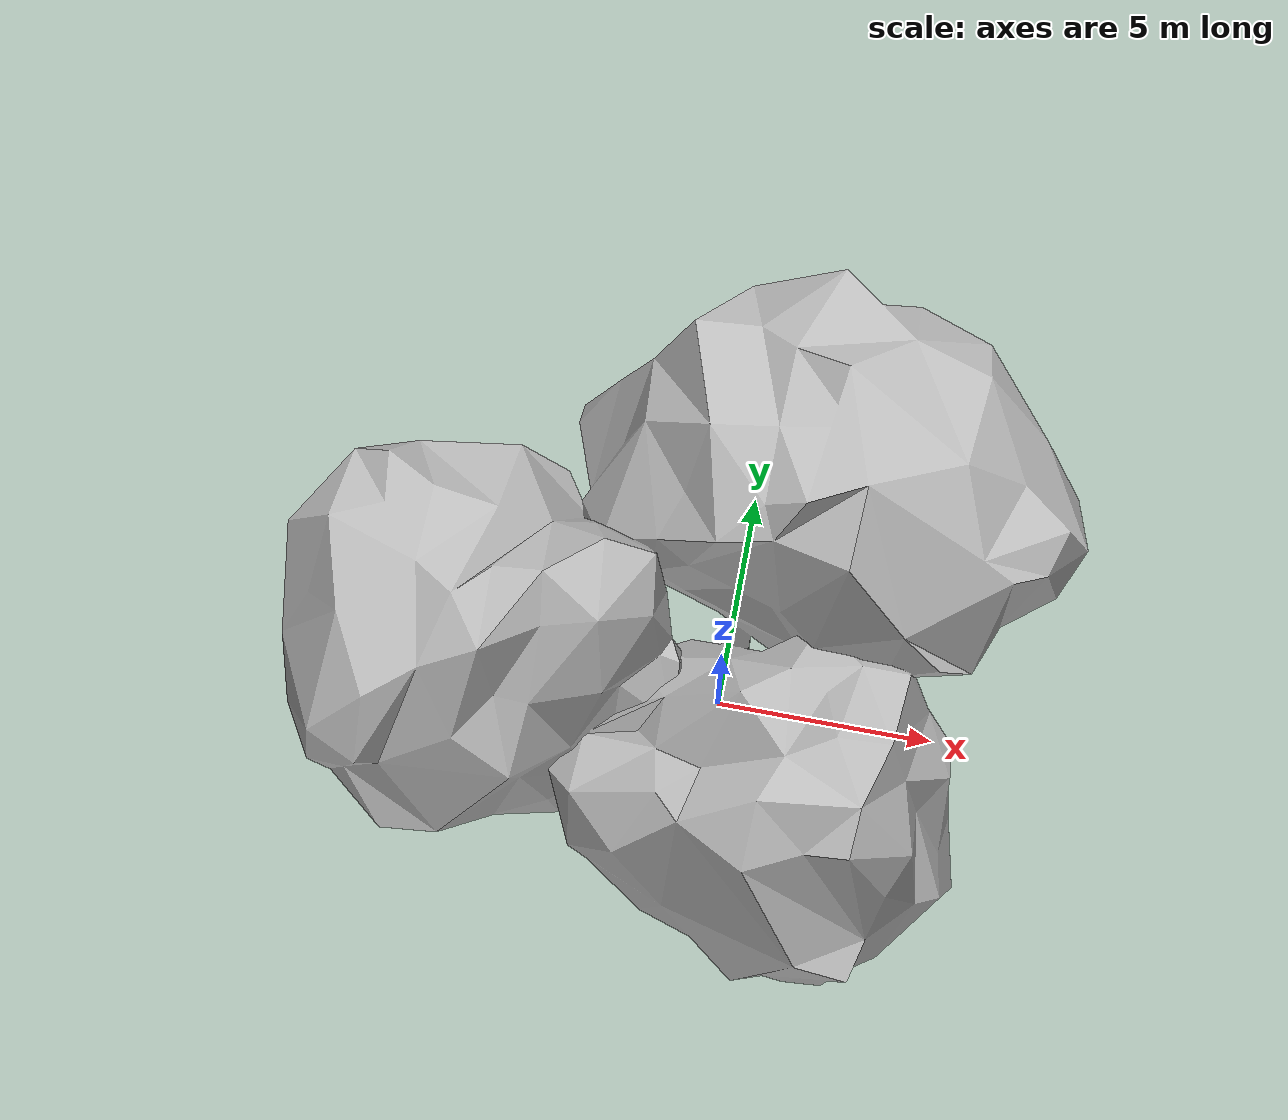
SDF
<?xml version="1.0" ?>
<sdf version="1.6">
  <model name="tree_lowpoly">
    <static>true</static>
    <link name="link">
      <visual name="visual">
        <geometry>
          <mesh>
            <uri>model://tree_lowpoly/meshes/tree_lowpoly.obj</uri>
          </mesh>
        </geometry>
      </visual>

      <collision name="collision">
        <geometry>
          <mesh><uri>model://tree_lowpoly/meshes/tree_lowpoly.stl</uri></mesh>
        </geometry>
      </collision>
    </link>
  </model>
</sdf>
